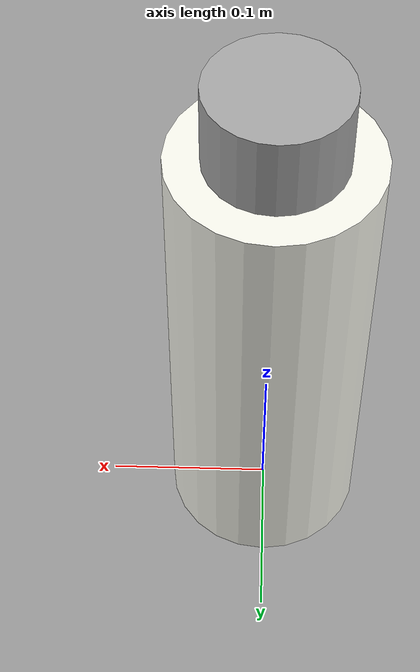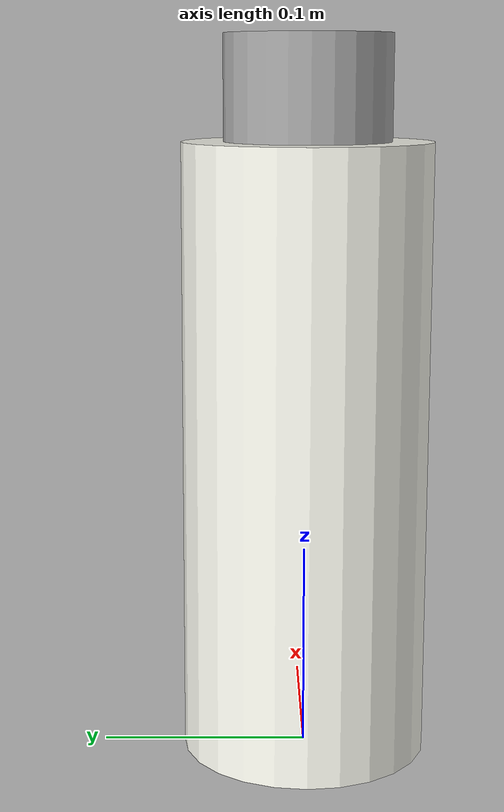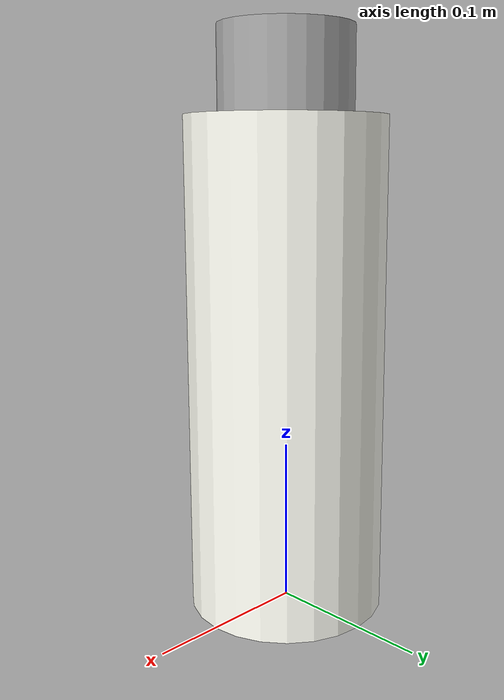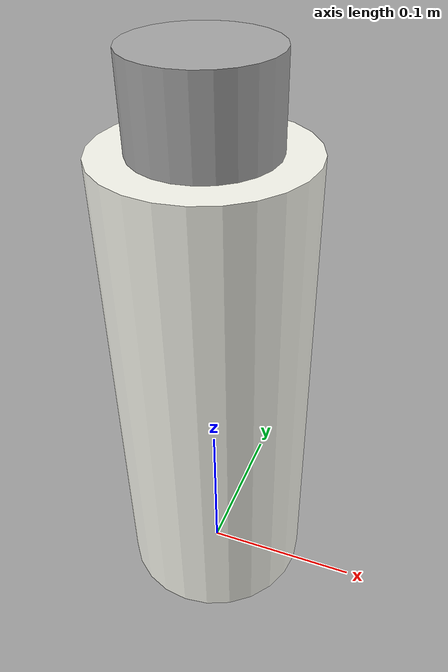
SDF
<?xml version="1.0"?>
<sdf version="1.10">
  <model name="insulator">
    <static>true</static>
    <link name="link">
      <visual name="porcelain">
        <pose>0 0 0.15 0 0 0</pose>
        <geometry>
          <cylinder>
            <radius>0.06</radius>
            <length>0.30</length>
          </cylinder>
        </geometry>
        <material>
          <ambient>0.92 0.92 0.88 1</ambient>
          <diffuse>0.97 0.97 0.93 1</diffuse>
          <specular>0.35 0.35 0.35 1</specular>
        </material>
      </visual>
      <visual name="hardware_top">
        <pose>0 0 0.32 0 0 0</pose>
        <geometry>
          <cylinder>
            <radius>0.04</radius>
            <length>0.06</length>
          </cylinder>
        </geometry>
        <material>
          <ambient>0.55 0.55 0.55 1</ambient>
          <diffuse>0.65 0.65 0.65 1</diffuse>
        </material>
      </visual>
      <visual name="hardware_base">
        <pose>0 0 0.02 0 0 0</pose>
        <geometry>
          <cylinder>
            <radius>0.05</radius>
            <length>0.04</length>
          </cylinder>
        </geometry>
        <material>
          <ambient>0.55 0.55 0.55 1</ambient>
          <diffuse>0.65 0.65 0.65 1</diffuse>
        </material>
      </visual>
    </link>
  </model>
</sdf>
